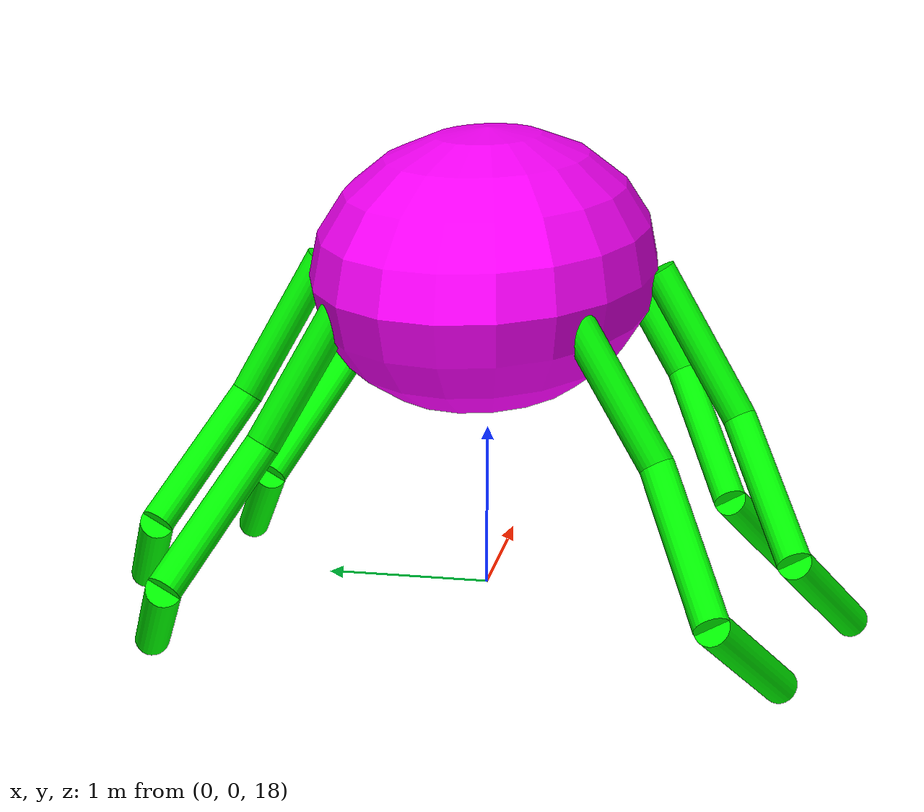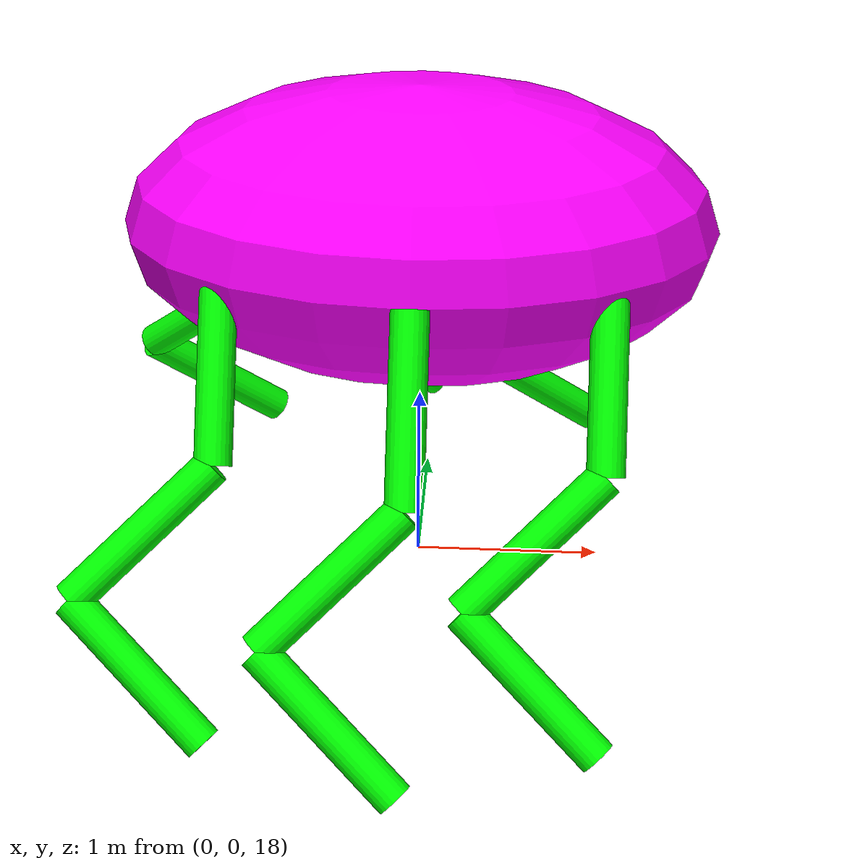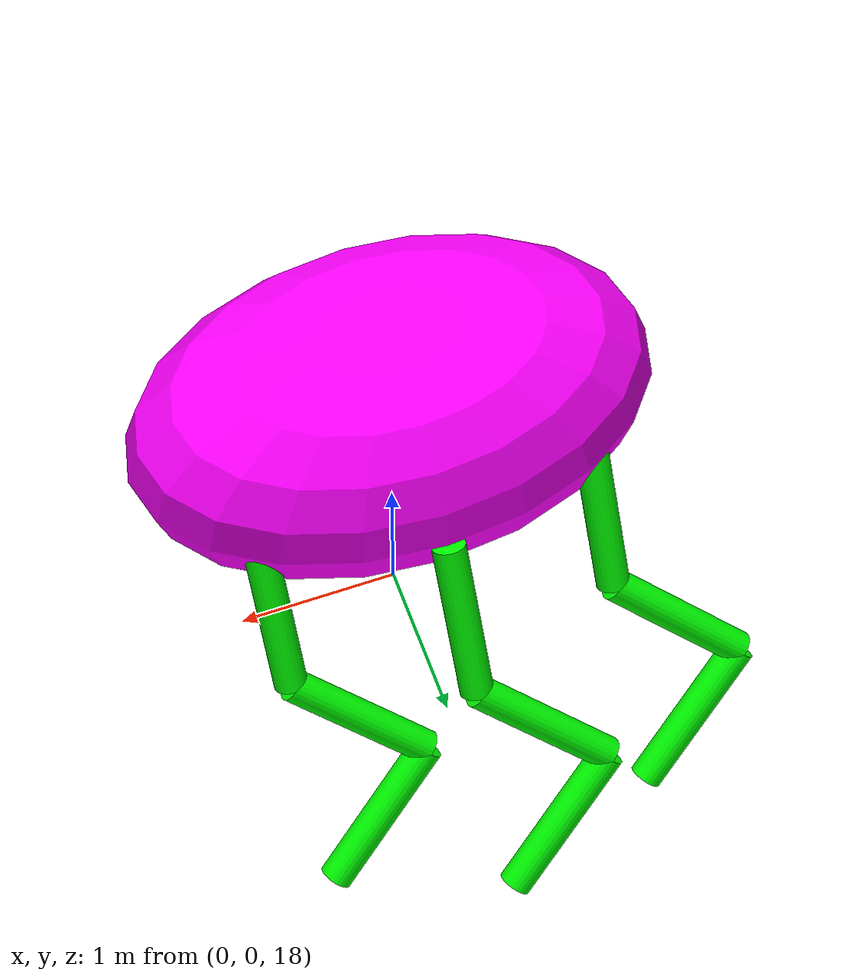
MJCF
<mujoco model="unnamed_model">
  <option timestep="0.01"/>
  <visual>
    <headlight ambient="0.5 0.5 0.5"/>
  </visual>
  <default>
    <default class="/"/>
  </default>
  <worldbody>
    <light name="//unnamed_light_0" class="/" pos="0 0 3" dir="0 0 -1" diffuse="0.5 0.5 0.5"/>
    <geom name="//unnamed_geom_0" class="/" type="plane" size="50 50 0.10000000000000001" rgba="1 1 0.20000000000000001 1"/>
    <body name="//unnamed_body_0" pos="0 0 20" euler="0 180 0">
      <joint name="//unnamed_joint_0" class="/" type="free" pos="0 0 -0.5" axis="-1 0 0"/>
      <geom name="//unnamed_geom_1" class="/" type="ellipsoid" size="1.5800000000000001 1 0.80000000000000004" rgba="225 0 225 1" mass="1"/>
      <body name="limb1" pos="0 -1 0" euler="30 0 0">
        <geom name="//unnamed_geom_2" class="/" type="cylinder" size="0.10000000000000001 0.29999999999999999" rgba="0 1 0 1" fromto="0 0 0 0 0 1"/>
        <joint name="limb1_joint1" class="/" type="hinge" pos="0 0 1" axis="0 0 1" range="-45 45"/>
        <body name="limb1_part1" pos="0 0 1" euler="0 45 0">
          <geom name="//unnamed_geom_3" class="/" type="cylinder" size="0.10000000000000001 0.29999999999999999" rgba="0 1 0 1" fromto="0 0 0 0 0 1"/>
          <joint name="limb1_joint2" class="/" type="hinge" pos="0 0 1" axis="0 0 1" range="-45 45"/>
          <body name="limb1_part2" pos="0 0 1" euler="0 -90 0">
            <geom name="//unnamed_geom_4" class="/" type="cylinder" size="0.10000000000000001 0.29999999999999999" rgba="0 1 0 1" fromto="0 0 0 0 0 1"/>
            <joint name="limb1_joint3" class="/" type="hinge" pos="0 0 1" axis="0 0 1" range="-45 45"/>
          </body>
        </body>
      </body>
      <body name="limb2" pos="0 1 0" euler="-30 0 0">
        <geom name="//unnamed_geom_5" class="/" type="cylinder" size="0.10000000000000001 0.29999999999999999" rgba="0 1 0 1" fromto="0 0 0 0 0 1"/>
        <joint name="limb2_joint1" class="/" type="hinge" pos="0 0 1" axis="0 0 1" range="-45 45"/>
        <body name="limb2_part1" pos="0 0 1" euler="0 45 0">
          <geom name="//unnamed_geom_6" class="/" type="cylinder" size="0.10000000000000001 0.29999999999999999" rgba="0 1 0 1" fromto="0 0 0 0 0 1"/>
          <joint name="limb2_joint2" class="/" type="hinge" pos="0 0 1" axis="0 0 1" range="-45 45"/>
          <body name="limb2_part2" pos="0 0 1" euler="0 -90 0">
            <geom name="//unnamed_geom_7" class="/" type="cylinder" size="0.10000000000000001 0.29999999999999999" rgba="0 1 0 1" fromto="0 0 0 0 0 1"/>
            <joint name="limb2_joint3" class="/" type="hinge" pos="0 0 1" axis="0 0 1" range="-45 45"/>
          </body>
        </body>
      </body>
      <body name="limb3" pos="1 -0.59999999999999998 0" euler="30 0 0">
        <geom name="//unnamed_geom_8" class="/" type="cylinder" size="0.10000000000000001 0.29999999999999999" rgba="0 1 0 1" fromto="0 0 0 0 0 1"/>
        <joint name="limb3_joint1" class="/" type="hinge" pos="0 0 1" axis="0 0 1" range="-45 45"/>
        <body name="limb3_part1" pos="0 0 1" euler="0 45 0">
          <geom name="//unnamed_geom_9" class="/" type="cylinder" size="0.10000000000000001 0.29999999999999999" rgba="0 1 0 1" fromto="0 0 0 0 0 1"/>
          <joint name="limb3_joint2" class="/" type="hinge" pos="0 0 1" axis="0 0 1" range="-45 45"/>
          <body name="limb3_part2" pos="0 0 1" euler="0 -90 0">
            <geom name="//unnamed_geom_10" class="/" type="cylinder" size="0.10000000000000001 0.29999999999999999" rgba="0 1 0 1" fromto="0 0 0 0 0 1"/>
            <joint name="limb3_joint3" class="/" type="hinge" pos="0 0 1" axis="0 0 1" range="-45 45"/>
          </body>
        </body>
      </body>
      <body name="limb4" pos="1 0.59999999999999998 0" euler="-30 0 0">
        <geom name="//unnamed_geom_11" class="/" type="cylinder" size="0.10000000000000001 0.29999999999999999" rgba="0 1 0 1" fromto="0 0 0 0 0 1"/>
        <joint name="limb4_joint1" class="/" type="hinge" pos="0 0 1" axis="0 0 1" range="-45 45"/>
        <body name="limb4_part1" pos="0 0 1" euler="0 45 0">
          <geom name="//unnamed_geom_12" class="/" type="cylinder" size="0.10000000000000001 0.29999999999999999" rgba="0 1 0 1" fromto="0 0 0 0 0 1"/>
          <joint name="limb4_joint2" class="/" type="hinge" pos="0 0 1" axis="0 0 1" range="-45 45"/>
          <body name="limb4_part2" pos="0 0 1" euler="0 -90 0">
            <geom name="//unnamed_geom_13" class="/" type="cylinder" size="0.10000000000000001 0.29999999999999999" rgba="0 1 0 1" fromto="0 0 0 0 0 1"/>
            <joint name="limb4_joint3" class="/" type="hinge" pos="0 0 1" axis="0 0 1" range="-45 45"/>
          </body>
        </body>
      </body>
      <body name="limb5" pos="-1 -0.59999999999999998 0" euler="30 0 0">
        <geom name="//unnamed_geom_14" class="/" type="cylinder" size="0.10000000000000001 0.29999999999999999" rgba="0 1 0 1" fromto="0 0 0 0 0 1"/>
        <joint name="limb5_joint1" class="/" type="hinge" pos="0 0 1" axis="0 0 1" range="-45 45"/>
        <body name="limb5_part1" pos="0 0 1" euler="0 45 0">
          <geom name="//unnamed_geom_15" class="/" type="cylinder" size="0.10000000000000001 0.29999999999999999" rgba="0 1 0 1" fromto="0 0 0 0 0 1"/>
          <joint name="limb5_joint2" class="/" type="hinge" pos="0 0 1" axis="0 0 1" range="-45 45"/>
          <body name="limb5_part2" pos="0 0 1" euler="0 -90 0">
            <geom name="//unnamed_geom_16" class="/" type="cylinder" size="0.10000000000000001 0.29999999999999999" rgba="0 1 0 1" fromto="0 0 0 0 0 1"/>
            <joint name="limb5_joint3" class="/" type="hinge" pos="0 0 1" axis="0 0 1" range="-45 45"/>
          </body>
        </body>
      </body>
      <body name="limb6" pos="-1 0.59999999999999998 0" euler="-30 0 0">
        <geom name="//unnamed_geom_17" class="/" type="cylinder" size="0.10000000000000001 0.29999999999999999" rgba="0 1 0 1" fromto="0 0 0 0 0 1"/>
        <joint name="limb6_joint1" class="/" type="hinge" pos="0 0 1" axis="0 0 1" range="-45 45"/>
        <body name="limb6_part1" pos="0 0 1" euler="0 45 0">
          <geom name="//unnamed_geom_18" class="/" type="cylinder" size="0.10000000000000001 0.29999999999999999" rgba="0 1 0 1" fromto="0 0 0 0 0 1"/>
          <joint name="limb6_joint2" class="/" type="hinge" pos="0 0 1" axis="0 0 1" range="-45 45"/>
          <body name="limb6_part2" pos="0 0 1" euler="0 -90 0">
            <geom name="//unnamed_geom_19" class="/" type="cylinder" size="0.10000000000000001 0.29999999999999999" rgba="0 1 0 1" fromto="0 0 0 0 0 1"/>
            <joint name="limb6_joint3" class="/" type="hinge" pos="0 0 1" axis="0 0 1" range="-45 45"/>
          </body>
        </body>
      </body>
    </body>
  </worldbody>
  <actuator>
    <motor name="motor_limb1_joint1" class="/" ctrllimited="true" ctrlrange="-45 45" gear="50" joint="limb1_joint1"/>
    <motor name="motor_limb1_joint2" class="/" ctrllimited="true" ctrlrange="-45 45" gear="50" joint="limb1_joint2"/>
    <motor name="motor_limb1_joint3" class="/" ctrllimited="true" ctrlrange="-45 45" gear="50" joint="limb1_joint3"/>
    <motor name="motor_limb2_joint1" class="/" ctrllimited="true" ctrlrange="-45 45" gear="50" joint="limb2_joint1"/>
    <motor name="motor_limb2_joint2" class="/" ctrllimited="true" ctrlrange="-45 45" gear="50" joint="limb2_joint2"/>
    <motor name="motor_limb2_joint3" class="/" ctrllimited="true" ctrlrange="-45 45" gear="50" joint="limb2_joint3"/>
    <motor name="motor_limb3_joint1" class="/" ctrllimited="true" ctrlrange="-45 45" gear="50" joint="limb3_joint1"/>
    <motor name="motor_limb3_joint2" class="/" ctrllimited="true" ctrlrange="-45 45" gear="50" joint="limb3_joint2"/>
    <motor name="motor_limb3_joint3" class="/" ctrllimited="true" ctrlrange="-45 45" gear="50" joint="limb3_joint3"/>
    <motor name="motor_limb4_joint1" class="/" ctrllimited="true" ctrlrange="-45 45" gear="50" joint="limb4_joint1"/>
    <motor name="motor_limb4_joint2" class="/" ctrllimited="true" ctrlrange="-45 45" gear="50" joint="limb4_joint2"/>
    <motor name="motor_limb4_joint3" class="/" ctrllimited="true" ctrlrange="-45 45" gear="50" joint="limb4_joint3"/>
    <motor name="motor_limb5_joint1" class="/" ctrllimited="true" ctrlrange="-45 45" gear="50" joint="limb5_joint1"/>
    <motor name="motor_limb5_joint2" class="/" ctrllimited="true" ctrlrange="-45 45" gear="50" joint="limb5_joint2"/>
    <motor name="motor_limb5_joint3" class="/" ctrllimited="true" ctrlrange="-45 45" gear="50" joint="limb5_joint3"/>
    <motor name="motor_limb6_joint1" class="/" ctrllimited="true" ctrlrange="-45 45" gear="50" joint="limb6_joint1"/>
    <motor name="motor_limb6_joint2" class="/" ctrllimited="true" ctrlrange="-45 45" gear="50" joint="limb6_joint2"/>
    <motor name="motor_limb6_joint3" class="/" ctrllimited="true" ctrlrange="-45 45" gear="50" joint="limb6_joint3"/>
  </actuator>
</mujoco>
